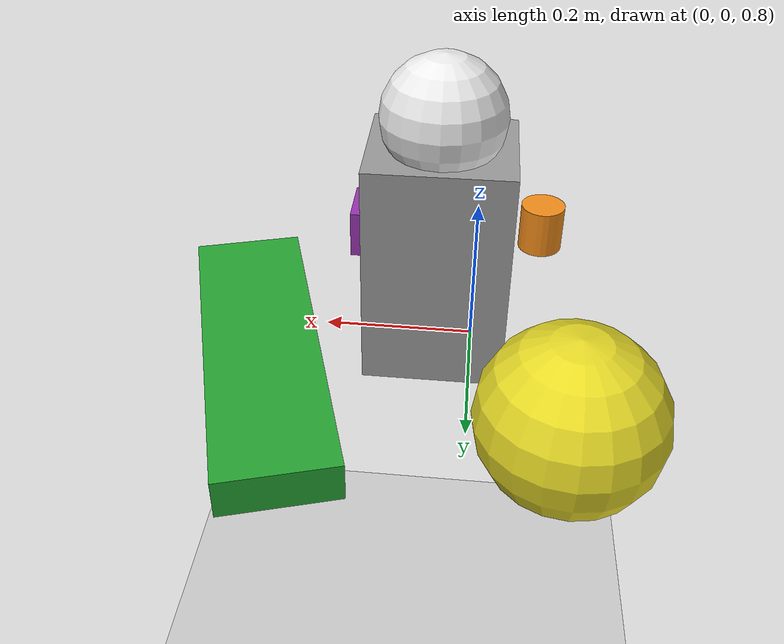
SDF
<sdf version="1.7">
 <world name="default">
  <light name="sun" type="directional">
   <pose>0 0 10 0 -0 0</pose>
   <diffuse>0.8 0.8 0.8 1</diffuse>
   <specular>0.2 0.2 0.2 1</specular>
   <attenuation>
    <range>1000</range>
    <constant>0.9</constant>
    <linear>0.01</linear>
    <quadratic>0.001</quadratic>
   </attenuation>
   <direction>-0.5 0.1 -0.9</direction>
   <spot><inner_angle>0</inner_angle><outer_angle>0</outer_angle><falloff>0</falloff></spot>
  </light>
  <model name="ground_plane">
   <static>1</static>
   <link name="link">
    <collision name="collision">
     <geometry><plane><normal>0 0 1</normal><size>100 100</size></plane></geometry>
     <surface><friction><ode><mu>100</mu><mu2>50</mu2></ode></friction></surface>
    </collision>
    <visual name="visual">
     <cast_shadows>0</cast_shadows>
     <geometry><plane><normal>0 0 1</normal><size>100 100</size></plane></geometry>
     <material>
      <script><uri>file://media/materials/scripts/gazebo.material</uri><name>Gazebo/Grey</name></script>
     </material>
    </visual>
   </link>
  </model>
  <gravity>0 0 -9.8</gravity>
  <magnetic_field>6e-06 2.3e-05 -4.2e-05</magnetic_field>
  <atmosphere type="adiabatic"/>
  <physics type="ode">
   <max_step_size>0.001</max_step_size>
   <real_time_factor>1</real_time_factor>
   <real_time_update_rate>1000</real_time_update_rate>
  </physics>
  <scene><ambient>0.4 0.4 0.4 1</ambient><background>0.7 0.7 0.7 1</background><shadows>1</shadows></scene>
  <spherical_coordinates>
   <surface_model>EARTH_WGS84</surface_model>
   <latitude_deg>0</latitude_deg>
   <longitude_deg>0</longitude_deg>
   <elevation>0</elevation>
   <heading_deg>0</heading_deg>
  </spherical_coordinates>
  <model name="pillar_orange">
   <link name="link_0">
    <inertial>
     <mass>0.00041018</mass>
     <inertia><ixx>3.4e-07</ixx><ixy>0</ixy><ixz>0</ixz><iyy>3.4e-07</iyy><iyz>0</iyz><izz>2.7e-07</izz></inertia>
    </inertial>
    <visual name="visual">
     <geometry><cylinder><radius>0.0359934</radius><length>0.0787103</length></cylinder></geometry>
     <material>
      <lighting>1</lighting>
      <script><uri>file://media/materials/scripts/gazebo.material</uri><name>Gazebo/Orange</name></script>
      <shader type="pixel"><normal_map>__default__</normal_map></shader>
      <ambient>1 0.509 0.047 1</ambient>
      <diffuse>1 0.509 0.047 1</diffuse>
      <specular>0.5 0.5 0.5 1</specular>
      <emissive>0 0 0 1</emissive>
     </material>
    </visual>
    <collision name="collision">
     <geometry><cylinder><radius>0.035993</radius><length>0.07871</length></cylinder></geometry>
     <surface>
      <friction>
       <ode><mu>1</mu><mu2>1</mu2><fdir1>0 0 0</fdir1><slip1>0</slip1><slip2>0</slip2></ode>
       <torsional>
        <coefficient>1</coefficient>
        <patch_radius>0</patch_radius>
        <surface_radius>0</surface_radius>
        <use_patch_radius>1</use_patch_radius>
        <ode><slip>0</slip></ode>
       </torsional>
      </friction>
      <bounce><restitution_coefficient>0</restitution_coefficient><threshold>1e+06</threshold></bounce>
      <contact>
       <collide_without_contact>0</collide_without_contact>
       <collide_without_contact_bitmask>1</collide_without_contact_bitmask>
       <collide_bitmask>1</collide_bitmask>
       <ode>
        <soft_cfm>0</soft_cfm>
        <soft_erp>0.2</soft_erp>
        <kp>1e+13</kp>
        <kd>1</kd>
        <max_vel>0.01</max_vel>
        <min_depth>0</min_depth>
       </ode>
       <bullet>
        <split_impulse>1</split_impulse>
        <split_impulse_penetration_threshold>-0.01</split_impulse_penetration_threshold>
        <soft_cfm>0</soft_cfm>
        <soft_erp>0.2</soft_erp>
        <kp>1e+13</kp>
        <kd>1</kd>
       </bullet>
      </contact>
     </surface>
    </collision>
   </link>
   <static>0</static>
   <pose>-0.109902 -0.329319 0.777935 0 -0 0</pose>
  </model>
  <model name="suckman">
   <link name="link_1">
    <inertial>
     <mass>0.010882</mass>
     <inertia>
      <ixx>0.00012139</ixx>
      <ixy>0</ixy>
      <ixz>0</ixz>
      <iyy>0.00012876</iyy>
      <iyz>0</iyz>
      <izz>6.166e-05</izz>
     </inertia>
    </inertial>
    <pose>6e-05 -0.00127 -0.101279 0 -0 0</pose>
    <visual name="visual">
     <geometry><box><size>0.195085 0.173015 0.322375</size></box></geometry>
     <material>
      <lighting>1</lighting>
      <script><uri>file://media/materials/scripts/gazebo.material</uri><name>Gazebo/Grey</name></script>
      <shader type="pixel"><normal_map>__default__</normal_map></shader>
      <ambient>0.3 0.3 0.3 1</ambient>
      <diffuse>0.7 0.7 0.7 1</diffuse>
      <specular>0.01 0.01 0.01 1</specular>
      <emissive>0 0 0 1</emissive>
     </material>
    </visual>
    <collision name="collision">
     <geometry><box><size>0.195085 0.173015 0.322375</size></box></geometry>
     <surface>
      <friction>
       <ode><mu>1</mu><mu2>1</mu2><fdir1>0 0 0</fdir1><slip1>0</slip1><slip2>0</slip2></ode>
       <torsional>
        <coefficient>1</coefficient>
        <patch_radius>0</patch_radius>
        <surface_radius>0</surface_radius>
        <use_patch_radius>1</use_patch_radius>
        <ode><slip>0</slip></ode>
       </torsional>
      </friction>
      <bounce><restitution_coefficient>0</restitution_coefficient><threshold>1e+06</threshold></bounce>
      <contact>
       <collide_without_contact>0</collide_without_contact>
       <collide_without_contact_bitmask>1</collide_without_contact_bitmask>
       <collide_bitmask>1</collide_bitmask>
       <ode>
        <soft_cfm>0</soft_cfm>
        <soft_erp>0.2</soft_erp>
        <kp>1e+13</kp>
        <kd>1</kd>
        <max_vel>0.01</max_vel>
        <min_depth>0</min_depth>
       </ode>
       <bullet>
        <split_impulse>1</split_impulse>
        <split_impulse_penetration_threshold>-0.01</split_impulse_penetration_threshold>
        <soft_cfm>0</soft_cfm>
        <soft_erp>0.2</soft_erp>
        <kp>1e+13</kp>
        <kd>1</kd>
       </bullet>
      </contact>
     </surface>
    </collision>
   </link>
   <link name="link_2">
    <inertial>
     <mass>0.00455777</mass>
     <inertia>
      <ixx>1.253e-05</ixx>
      <ixy>0</ixy>
      <ixz>0</ixz>
      <iyy>1.253e-05</iyy>
      <iyz>0</iyz>
      <izz>1.253e-05</izz>
     </inertia>
    </inertial>
    <pose>-6e-05 0.00127 0.101279 0 -0 0</pose>
    <visual name="visual">
     <geometry><sphere><radius>0.0828953</radius></sphere></geometry>
     <material>
      <lighting>1</lighting>
      <script><uri>file://media/materials/scripts/gazebo.material</uri><name>Gazebo/White</name></script>
      <shader type="pixel"><normal_map>__default__</normal_map></shader>
      <ambient>1 1 1 1</ambient>
      <diffuse>1 1 1 1</diffuse>
      <specular>0 0 0 1</specular>
      <emissive>0 0 0 1</emissive>
     </material>
    </visual>
    <collision name="collision">
     <geometry><sphere><radius>0.082895</radius></sphere></geometry>
     <surface>
      <friction>
       <ode><mu>1</mu><mu2>1</mu2><fdir1>0 0 0</fdir1><slip1>0</slip1><slip2>0</slip2></ode>
       <torsional>
        <coefficient>1</coefficient>
        <patch_radius>0</patch_radius>
        <surface_radius>0</surface_radius>
        <use_patch_radius>1</use_patch_radius>
        <ode><slip>0</slip></ode>
       </torsional>
      </friction>
      <bounce><restitution_coefficient>0</restitution_coefficient><threshold>1e+06</threshold></bounce>
      <contact>
       <collide_without_contact>0</collide_without_contact>
       <collide_without_contact_bitmask>1</collide_without_contact_bitmask>
       <collide_bitmask>1</collide_bitmask>
       <ode>
        <soft_cfm>0</soft_cfm>
        <soft_erp>0.2</soft_erp>
        <kp>1e+13</kp>
        <kd>1</kd>
        <max_vel>0.01</max_vel>
        <min_depth>0</min_depth>
       </ode>
       <bullet>
        <split_impulse>1</split_impulse>
        <split_impulse_penetration_threshold>-0.01</split_impulse_penetration_threshold>
        <soft_cfm>0</soft_cfm>
        <soft_erp>0.2</soft_erp>
        <kp>1e+13</kp>
        <kd>1</kd>
       </bullet>
      </contact>
     </surface>
    </collision>
   </link>
   <static>0</static>
   <pose>0.050827 -0.055534 0.995102 0 -0 0</pose>
  </model>
  <model name="ball_yellow">
   <link name="link_4">
    <inertial>
     <mass>0.0125365</mass>
     <inertia>
      <ixx>6.765e-05</ixx>
      <ixy>0</ixy>
      <ixz>0</ixz>
      <iyy>6.765e-05</iyy>
      <iyz>0</iyz>
      <izz>6.765e-05</izz>
     </inertia>
    </inertial>
    <visual name="visual">
     <geometry><sphere><radius>0.116147</radius></sphere></geometry>
     <material>
      <lighting>1</lighting>
      <script><uri>file://media/materials/scripts/gazebo.material</uri><name>Gazebo/Yellow</name></script>
      <shader type="pixel"><normal_map>__default__</normal_map></shader>
      <ambient>1 1 0 1</ambient>
      <diffuse>1 1 0 1</diffuse>
      <emissive>0 0 0 1</emissive>
     </material>
    </visual>
    <collision name="collision">
     <geometry><sphere><radius>0.116147</radius></sphere></geometry>
     <surface>
      <friction>
       <ode><mu>1</mu><mu2>1</mu2><fdir1>0 0 0</fdir1><slip1>0</slip1><slip2>0</slip2></ode>
       <torsional>
        <coefficient>1</coefficient>
        <patch_radius>0</patch_radius>
        <surface_radius>0</surface_radius>
        <use_patch_radius>1</use_patch_radius>
        <ode><slip>0</slip></ode>
       </torsional>
      </friction>
      <bounce><restitution_coefficient>0</restitution_coefficient><threshold>1e+06</threshold></bounce>
      <contact>
       <collide_without_contact>0</collide_without_contact>
       <collide_without_contact_bitmask>1</collide_without_contact_bitmask>
       <collide_bitmask>1</collide_bitmask>
       <ode>
        <soft_cfm>0</soft_cfm>
        <soft_erp>0.2</soft_erp>
        <kp>1e+13</kp>
        <kd>1</kd>
        <max_vel>0.01</max_vel>
        <min_depth>0</min_depth>
       </ode>
       <bullet>
        <split_impulse>1</split_impulse>
        <split_impulse_penetration_threshold>-0.01</split_impulse_penetration_threshold>
        <soft_cfm>0</soft_cfm>
        <soft_erp>0.2</soft_erp>
        <kp>1e+13</kp>
        <kd>1</kd>
       </bullet>
      </contact>
     </surface>
    </collision>
   </link>
   <static>0</static>
   <pose>-0.120454 0.212171 0.848307 0 -0 0</pose>
  </model>
  <model name="box_Green">
   <link name="link_5">
    <inertial>
     <mass>0.00461974</mass>
     <inertia>
      <ixx>1.092e-05</ixx>
      <ixy>0</ixy>
      <ixz>0</ixz>
      <iyy>0.00010188</iyy>
      <iyz>0</iyz>
      <izz>0.00011034</izz>
     </inertia>
    </inertial>
    <pose>-1e-06 0 0 0 -0 0</pose>
    <visual name="visual">
     <geometry><box><size>0.511319 0.158661 0.056562</size></box></geometry>
     <material>
      <lighting>1</lighting>
      <script><uri>file://media/materials/scripts/gazebo.material</uri><name>Gazebo/Green</name></script>
      <shader type="pixel"><normal_map>__default__</normal_map></shader>
      <ambient>0 1 0 1</ambient>
      <diffuse>0 1 0 1</diffuse>
      <specular>0.1 0.1 0.1 1</specular>
      <emissive>0 0 0 1</emissive>
     </material>
    </visual>
    <collision name="collision">
     <geometry><box><size>0.511319 0.158661 0.056562</size></box></geometry>
     <surface>
      <friction>
       <ode><mu>1</mu><mu2>1</mu2><fdir1>0 0 0</fdir1><slip1>0</slip1><slip2>0</slip2></ode>
       <torsional>
        <coefficient>1</coefficient>
        <patch_radius>0</patch_radius>
        <surface_radius>0</surface_radius>
        <use_patch_radius>1</use_patch_radius>
        <ode><slip>0</slip></ode>
       </torsional>
      </friction>
      <bounce><restitution_coefficient>0</restitution_coefficient><threshold>1e+06</threshold></bounce>
      <contact>
       <collide_without_contact>0</collide_without_contact>
       <collide_without_contact_bitmask>1</collide_without_contact_bitmask>
       <collide_bitmask>1</collide_bitmask>
       <ode>
        <soft_cfm>0</soft_cfm>
        <soft_erp>0.2</soft_erp>
        <kp>1e+13</kp>
        <kd>1</kd>
        <max_vel>0.01</max_vel>
        <min_depth>0</min_depth>
       </ode>
       <bullet>
        <split_impulse>1</split_impulse>
        <split_impulse_penetration_threshold>-0.01</split_impulse_penetration_threshold>
        <soft_cfm>0</soft_cfm>
        <soft_erp>0.2</soft_erp>
        <kp>1e+13</kp>
        <kd>1</kd>
       </bullet>
      </contact>
     </surface>
    </collision>
   </link>
   <static>0</static>
   <pose>0.288729 0.038019 0.762544 0 0 -1.27903</pose>
  </model>
  <model name="something.">
   <link name="link_6">
    <inertial>
     <mass>0.00066699</mass>
     <inertia><ixx>8.1e-07</ixx><ixy>0</ixy><ixz>0</ixz><iyy>8.2e-07</iyy><iyz>0</iyz><izz>9.3e-07</izz></inertia>
    </inertial>
    <pose>4e-05 -0.004735 -0.035656 0 -0 0</pose>
    <visual name="visual">
     <geometry><box><size>0.091561 0.091353 0.079308</size></box></geometry>
     <material>
      <lighting>1</lighting>
      <script><uri>file://media/materials/scripts/gazebo.material</uri><name>Gazebo/Purple</name></script>
      <shader type="pixel"><normal_map>__default__</normal_map></shader>
      <ambient>1 0 1 1</ambient>
      <diffuse>1 0 1 1</diffuse>
      <specular>0.1 0.1 0.1 1</specular>
      <emissive>0 0 0 1</emissive>
     </material>
    </visual>
    <collision name="collision">
     <geometry><box><size>0.091561 0.091353 0.079308</size></box></geometry>
     <surface>
      <friction>
       <ode><mu>1</mu><mu2>1</mu2><fdir1>0 0 0</fdir1><slip1>0</slip1><slip2>0</slip2></ode>
       <torsional>
        <coefficient>1</coefficient>
        <patch_radius>0</patch_radius>
        <surface_radius>0</surface_radius>
        <use_patch_radius>1</use_patch_radius>
        <ode><slip>0</slip></ode>
       </torsional>
      </friction>
      <bounce><restitution_coefficient>0</restitution_coefficient><threshold>1e+06</threshold></bounce>
      <contact>
       <collide_without_contact>0</collide_without_contact>
       <collide_without_contact_bitmask>1</collide_without_contact_bitmask>
       <collide_bitmask>1</collide_bitmask>
       <ode>
        <soft_cfm>0</soft_cfm>
        <soft_erp>0.2</soft_erp>
        <kp>1e+13</kp>
        <kd>1</kd>
        <max_vel>0.01</max_vel>
        <min_depth>0</min_depth>
       </ode>
       <bullet>
        <split_impulse>1</split_impulse>
        <split_impulse_penetration_threshold>-0.01</split_impulse_penetration_threshold>
        <soft_cfm>0</soft_cfm>
        <soft_erp>0.2</soft_erp>
        <kp>1e+13</kp>
        <kd>1</kd>
       </bullet>
      </contact>
     </surface>
    </collision>
   </link>
   <link name="link_7">
    <inertial>
     <mass>0.00011638</mass>
     <inertia><ixx>2e-07</ixx><ixy>0</ixy><ixz>0</ixz><iyy>2e-07</iyy><iyz>0</iyz><izz>1e-08</izz></inertia>
    </inertial>
    <pose>-4e-05 0.004735 0.035655 0 -0 0</pose>
    <visual name="visual">
     <geometry><cylinder><radius>0.0145587</radius><length>0.139996</length></cylinder></geometry>
     <material>
      <lighting>1</lighting>
      <script><uri>file://media/materials/scripts/gazebo.material</uri><name>Gazebo/Blue</name></script>
      <shader type="pixel"><normal_map>__default__</normal_map></shader>
      <ambient>0 0 1 1</ambient>
      <diffuse>0 0 1 1</diffuse>
      <specular>0.1 0.1 0.1 1</specular>
      <emissive>0 0 0 1</emissive>
     </material>
    </visual>
    <collision name="collision">
     <geometry><cylinder><radius>0.014559</radius><length>0.139996</length></cylinder></geometry>
     <surface>
      <friction>
       <ode><mu>1</mu><mu2>1</mu2><fdir1>0 0 0</fdir1><slip1>0</slip1><slip2>0</slip2></ode>
       <torsional>
        <coefficient>1</coefficient>
        <patch_radius>0</patch_radius>
        <surface_radius>0</surface_radius>
        <use_patch_radius>1</use_patch_radius>
        <ode><slip>0</slip></ode>
       </torsional>
      </friction>
      <bounce><restitution_coefficient>0</restitution_coefficient><threshold>1e+06</threshold></bounce>
      <contact>
       <collide_without_contact>0</collide_without_contact>
       <collide_without_contact_bitmask>1</collide_without_contact_bitmask>
       <collide_bitmask>1</collide_bitmask>
       <ode>
        <soft_cfm>0</soft_cfm>
        <soft_erp>0.2</soft_erp>
        <kp>1e+13</kp>
        <kd>1</kd>
        <max_vel>0.01</max_vel>
        <min_depth>0</min_depth>
       </ode>
       <bullet>
        <split_impulse>1</split_impulse>
        <split_impulse_penetration_threshold>-0.01</split_impulse_penetration_threshold>
        <soft_cfm>0</soft_cfm>
        <soft_erp>0.2</soft_erp>
        <kp>1e+13</kp>
        <kd>1</kd>
       </bullet>
      </contact>
     </surface>
    </collision>
   </link>
   <static>0</static>
   <pose>0.160457 -0.316006 0.807005 0 -0 0</pose>
  </model>
 </world>
</sdf>
